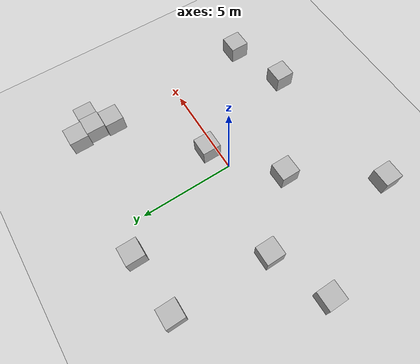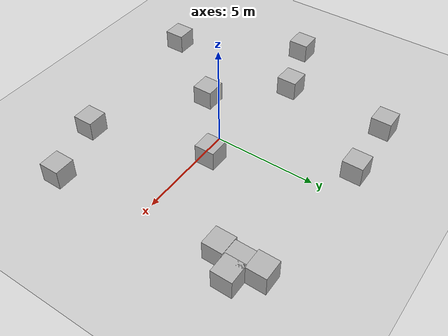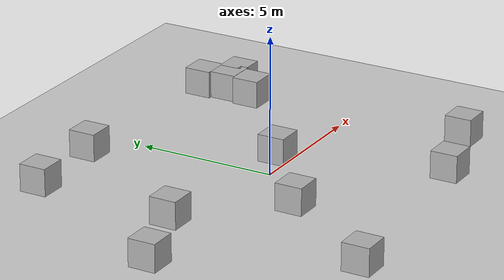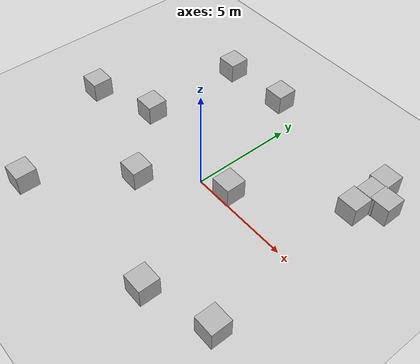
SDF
<sdf version="1.9">
 <world name="plain_test">
  <plugin filename="ignition-gazebo-physics-system" name="ignition::gazebo::systems::Physics"/>
  <plugin filename="ignition-gazebo-user-commands-system" name="ignition::gazebo::systems::UserCommands"/>
  <plugin filename="ignition-gazebo-scene-broadcaster-system" name="ignition::gazebo::systems::SceneBroadcaster"/>
  <plugin filename="libignition-gazebo-sensors-system.so" name="ignition::gazebo::systems::Sensors">
   <render_engine>ogre2</render_engine>
  </plugin>
  <physics name="1ms" type="ignored">
   <max_step_size>0.001</max_step_size>
   <real_time_factor>1</real_time_factor>
   <real_time_update_rate>1000</real_time_update_rate>
  </physics>
  <gravity>0 0 -9.8</gravity>
  <magnetic_field>6e-06 2.3e-05 -4.2e-05</magnetic_field>
  <atmosphere type="adiabatic"/>
  <scene><ambient>0.4 0.4 0.4 1</ambient><background>0.7 0.7 0.7 1</background><shadows>true</shadows></scene>
  <model name="ground_plane">
   <static>true</static>
   <link name="link">
    <collision name="collision">
     <geometry><plane><normal>0 0 1</normal><size>100 100</size></plane></geometry>
    </collision>
    <visual name="visual">
     <geometry><plane><normal>0 0 1</normal><size>100 100</size></plane></geometry>
     <material>
      <ambient>0.8 0.8 0.8 1</ambient>
      <diffuse>0.8 0.8 0.8 1</diffuse>
      <specular>0.8 0.8 0.8 1</specular>
     </material>
    </visual>
    <inertial>
     <mass>1</mass>
     <inertia><ixx>1</ixx><ixy>0</ixy><ixz>0</ixz><iyy>1</iyy><iyz>0</iyz><izz>1</izz></inertia>
    </inertial>
   </link>
  </model>
  <model name="box">
   <pose>1.33954 0.461801 0.5 0 -0 0</pose>
   <link name="box_link">
    <collision name="box_collision"><geometry><box><size>1 1 1</size></box></geometry></collision>
    <visual name="box_visual">
     <geometry><box><size>1 1 1</size></box></geometry>
     <material><ambient>0.3 0.3 0.3 1</ambient><diffuse>0.7 0.7 0.7 1</diffuse></material>
    </visual>
   </link>
   <static>true</static>
  </model>
  <model name="box_0">
   <pose>-1.54259 6.3082 0.5 0 -0 0</pose>
   <link name="box_link">
    <collision name="box_collision"><geometry><box><size>1 1 1</size></box></geometry></collision>
    <visual name="box_visual">
     <geometry><box><size>1 1 1</size></box></geometry>
     <material><ambient>0.3 0.3 0.3 1</ambient><diffuse>0.7 0.7 0.7 1</diffuse></material>
    </visual>
   </link>
   <static>true</static>
  </model>
  <model name="box_1">
   <pose>2.98411 -5.33368 0.5 0 -0 0</pose>
   <link name="box_link">
    <collision name="box_collision"><geometry><box><size>1 1 1</size></box></geometry></collision>
    <visual name="box_visual">
     <geometry><box><size>1 1 1</size></box></geometry>
     <material><ambient>0.3 0.3 0.3 1</ambient><diffuse>0.7 0.7 0.7 1</diffuse></material>
    </visual>
   </link>
   <static>true</static>
  </model>
  <model name="box_2">
   <pose>-1.97224 -2.08109 0.5 0 -0 0</pose>
   <link name="box_link">
    <collision name="box_collision"><geometry><box><size>1 1 1</size></box></geometry></collision>
    <visual name="box_visual">
     <geometry><box><size>1 1 1</size></box></geometry>
     <material><ambient>0.3 0.3 0.3 1</ambient><diffuse>0.7 0.7 0.7 1</diffuse></material>
    </visual>
   </link>
   <static>true</static>
  </model>
  <model name="box_3">
   <pose>5.48696 5.86886 0.5 0 -0 0</pose>
   <link name="box_link">
    <collision name="box_collision"><geometry><box><size>1 1 1</size></box></geometry></collision>
    <visual name="box_visual">
     <geometry><box><size>1 1 1</size></box></geometry>
     <material><ambient>0.3 0.3 0.3 1</ambient><diffuse>0.7 0.7 0.7 1</diffuse></material>
    </visual>
   </link>
   <static>true</static>
  </model>
  <model name="box_4">
   <pose>5.6067 4.88218 0.5 0 -0 0</pose>
   <link name="box_link">
    <collision name="box_collision"><geometry><box><size>1 1 1</size></box></geometry></collision>
    <visual name="box_visual">
     <geometry><box><size>1 1 1</size></box></geometry>
     <material><ambient>0.3 0.3 0.3 1</ambient><diffuse>0.7 0.7 0.7 1</diffuse></material>
    </visual>
   </link>
   <static>true</static>
  </model>
  <model name="box_5">
   <pose>5.48696 3.87224 0.5 0 -0 0</pose>
   <link name="box_link">
    <collision name="box_collision"><geometry><box><size>1 1 1</size></box></geometry></collision>
    <visual name="box_visual">
     <geometry><box><size>1 1 1</size></box></geometry>
     <material><ambient>0.3 0.3 0.3 1</ambient><diffuse>0.7 0.7 0.7 1</diffuse></material>
    </visual>
   </link>
   <static>true</static>
  </model>
  <model name="box_6">
   <pose>6.35326 4.90726 0.5 0 -0 0</pose>
   <link name="box_link">
    <collision name="box_collision"><geometry><box><size>1 1 1</size></box></geometry></collision>
    <visual name="box_visual">
     <geometry><box><size>1 1 1</size></box></geometry>
     <material><ambient>0.3 0.3 0.3 1</ambient><diffuse>0.7 0.7 0.7 1</diffuse></material>
    </visual>
   </link>
   <static>true</static>
  </model>
  <model name="box_7">
   <pose>-4.95345 -6.15033 0.5 0 -0 0</pose>
   <link name="box_link">
    <collision name="box_collision"><geometry><box><size>1 1 1</size></box></geometry></collision>
    <visual name="box_visual">
     <geometry><box><size>1 1 1</size></box></geometry>
     <material><ambient>0.3 0.3 0.3 1</ambient><diffuse>0.7 0.7 0.7 1</diffuse></material>
    </visual>
   </link>
   <static>true</static>
  </model>
  <model name="box_8">
   <pose>-4.95345 0.946763 0.5 0 -0 0</pose>
   <link name="box_link">
    <collision name="box_collision"><geometry><box><size>1 1 1</size></box></geometry></collision>
    <visual name="box_visual">
     <geometry><box><size>1 1 1</size></box></geometry>
     <material><ambient>0.3 0.3 0.3 1</ambient><diffuse>0.7 0.7 0.7 1</diffuse></material>
    </visual>
   </link>
   <static>true</static>
  </model>
  <model name="box_9">
   <pose>-4.84384 6.11723 0.5 0 -0 0</pose>
   <link name="box_link">
    <collision name="box_collision"><geometry><box><size>1 1 1</size></box></geometry></collision>
    <visual name="box_visual">
     <geometry><box><size>1 1 1</size></box></geometry>
     <material><ambient>0.3 0.3 0.3 1</ambient><diffuse>0.7 0.7 0.7 1</diffuse></material>
    </visual>
   </link>
   <static>true</static>
  </model>
  <model name="box_10">
   <pose>6.07338 -4.36559 0.5 0 -0 0</pose>
   <link name="box_link">
    <collision name="box_collision"><geometry><box><size>1 1 1</size></box></geometry></collision>
    <visual name="box_visual">
     <geometry><box><size>1 1 1</size></box></geometry>
     <material><ambient>0.3 0.3 0.3 1</ambient><diffuse>0.7 0.7 0.7 1</diffuse></material>
    </visual>
   </link>
   <static>true</static>
  </model>
  <model name="box_11">
   <pose>-8.02792 -0.168455 0.5 0 -0 0</pose>
   <link name="box_link">
    <collision name="box_collision"><geometry><box><size>1 1 1</size></box></geometry></collision>
    <visual name="box_visual">
     <geometry><box><size>1 1 1</size></box></geometry>
     <material><ambient>0.3 0.3 0.3 1</ambient><diffuse>0.7 0.7 0.7 1</diffuse></material>
    </visual>
   </link>
   <static>true</static>
  </model>
  <light name="sun" type="directional">
   <pose>0 0 10 0 -0 0</pose>
   <intensity>1</intensity>
   <direction>-0.5 0.1 -0.9</direction>
   <diffuse>0.8 0.8 0.8 1</diffuse>
   <specular>0.2 0.2 0.2 1</specular>
  </light>
 </world>
</sdf>
